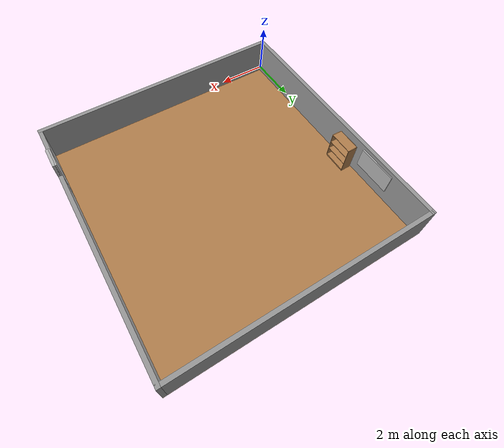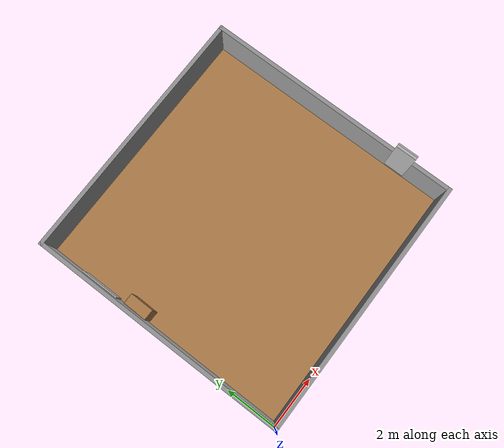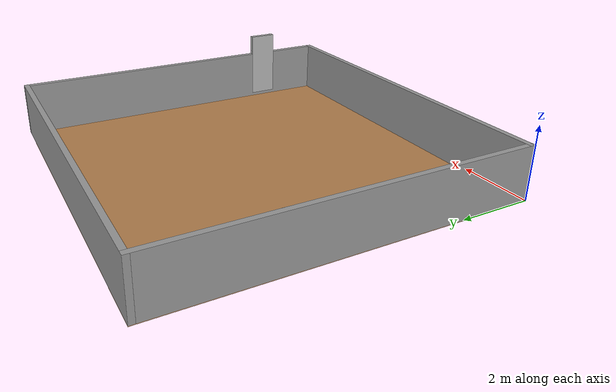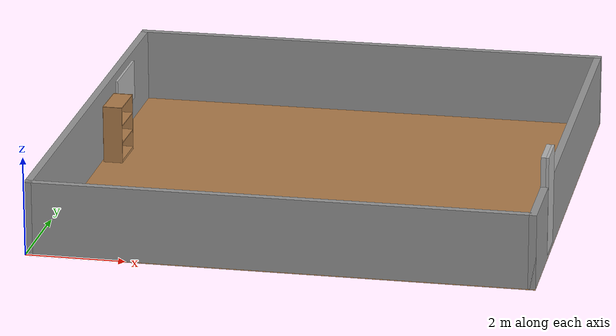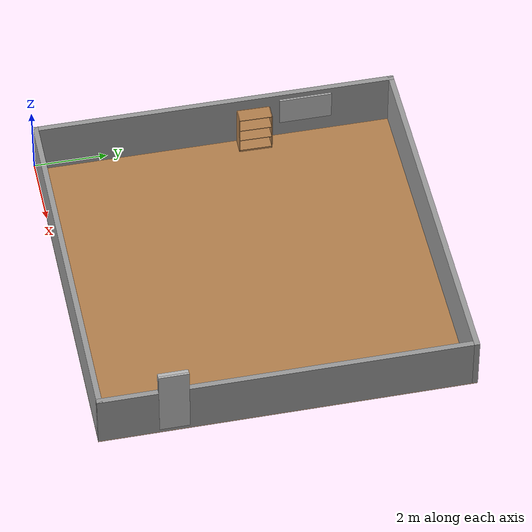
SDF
<sdf version="1.7">
 <world name="default">
  <light name="sun" type="directional">
   <pose>0 0 10 0 -0 0</pose>
   <diffuse>0.8 0.8 0.8 1</diffuse>
   <specular>0.2 0.2 0.2 1</specular>
   <attenuation>
    <range>1000</range>
    <constant>0.9</constant>
    <linear>0.01</linear>
    <quadratic>0.001</quadratic>
   </attenuation>
   <direction>-0.5 0.1 -0.9</direction>
   <spot><inner_angle>0</inner_angle><outer_angle>0</outer_angle><falloff>0</falloff></spot>
  </light>
  <model name="floor">
   <pose>5 5 0 0 0 0</pose>
   <static>1</static>
   <link name="link">
    <collision name="collision">
     <geometry><plane><normal>0 0 1</normal><size>10 10</size></plane></geometry>
     <surface>
      <contact><collide_bitmask>65535</collide_bitmask></contact>
      <friction><ode><mu>100</mu><mu2>50</mu2></ode></friction>
     </surface>
    </collision>
    <visual name="visual">
     <cast_shadows>0</cast_shadows>
     <geometry><plane><normal>0 0 1</normal><size>10 10</size></plane></geometry>
     <material>
      <script><uri>file://media/materials/scripts/gazebo.material</uri><name>Gazebo/Wood</name></script>
     </material>
    </visual>
   </link>
  </model>
  <gravity>0 0 -9.8</gravity>
  <magnetic_field>6e-06 2.3e-05 -4.2e-05</magnetic_field>
  <atmosphere type="adiabatic"/>
  <physics type="ode">
   <max_step_size>0.001</max_step_size>
   <real_time_factor>1</real_time_factor>
   <real_time_update_rate>250</real_time_update_rate>
  </physics>
  <scene><ambient>0.4 0.4 0.4 1</ambient><background>0.7 0.7 0.7 1</background><shadows>1</shadows></scene>
  <audio><device>default</device></audio>
  <spherical_coordinates>
   <surface_model>EARTH_WGS84</surface_model>
   <latitude_deg>0</latitude_deg>
   <longitude_deg>0</longitude_deg>
   <elevation>0</elevation>
   <heading_deg>0</heading_deg>
  </spherical_coordinates>
  <model name="empty_room">
   <pose>5 5 0 0 -0 0</pose>
   <link name="Wall_0">
    <collision name="Wall_0_Collision">
     <geometry><box><size>10 0.15 1.5</size></box></geometry>
     <pose>0 0 0.75 0 -0 0</pose>
    </collision>
    <visual name="Wall_0_Visual">
     <pose>0 0 0.75 0 -0 0</pose>
     <geometry><box><size>10 0.15 1.5</size></box></geometry>
     <material>
      <script><uri>file://media/materials/scripts/gazebo.material</uri><name>Gazebo/Grey</name></script>
      <ambient>1 1 1 1</ambient>
     </material>
     <meta><layer>0</layer></meta>
    </visual>
    <pose>-0 -4.925 0 0 -0 0</pose>
   </link>
   <link name="Wall_2">
    <collision name="Wall_2_Collision">
     <geometry><box><size>10 0.15 1.5</size></box></geometry>
     <pose>0 0 0.75 0 -0 0</pose>
    </collision>
    <visual name="Wall_2_Visual">
     <pose>0 0 0.75 0 -0 0</pose>
     <geometry><box><size>10 0.15 1.5</size></box></geometry>
     <material>
      <script><uri>file://media/materials/scripts/gazebo.material</uri><name>Gazebo/Grey</name></script>
      <ambient>1 1 1 1</ambient>
     </material>
     <meta><layer>0</layer></meta>
    </visual>
    <pose>4.925 0 0 0 -0 1.5708</pose>
   </link>
   <link name="Wall_3">
    <collision name="Wall_3_Collision">
     <geometry><box><size>10 0.15 1.5</size></box></geometry>
     <pose>0 0 0.75 0 -0 0</pose>
    </collision>
    <visual name="Wall_3_Visual">
     <pose>0 0 0.75 0 -0 0</pose>
     <geometry><box><size>10 0.15 1.5</size></box></geometry>
     <material>
      <script><uri>file://media/materials/scripts/gazebo.material</uri><name>Gazebo/Grey</name></script>
      <ambient>1 1 1 1</ambient>
     </material>
     <meta><layer>0</layer></meta>
    </visual>
    <pose>-0 4.925 0 0 -0 3.14159</pose>
   </link>
   <link name="Wall_4">
    <collision name="Wall_4_Collision">
     <geometry><box><size>10 0.15 1.5</size></box></geometry>
     <pose>0 0 0.75 0 -0 0</pose>
    </collision>
    <visual name="Wall_4_Visual">
     <pose>0 0 0.75 0 -0 0</pose>
     <geometry><box><size>10 0.15 1.5</size></box></geometry>
     <material>
      <script><uri>file://media/materials/scripts/gazebo.material</uri><name>Gazebo/Grey</name></script>
      <ambient>1 1 1 1</ambient>
     </material>
     <meta><layer>0</layer></meta>
    </visual>
    <pose>-4.925 0 0 0 -0 -1.5708</pose>
   </link>
   <static>1</static>
  </model>
  <model name="tv_65in_emissive">
   <link name="link">
    <visual name="visual">
     <geometry><box><size>0.05 1.45 0.83</size></box></geometry>
     <material>
      <script>
       <uri>model://tv_65in_emissive/material/script</uri>
       <uri>model://tv_65in_emissive/material/textures</uri>
       <name>Custom/tv_emissive</name>
      </script>
     </material>
    </visual>
   </link>
   <static>1</static>
   <pose>0.202479 7.51075 0.950213 0 -0 0</pose>
  </model>
  <model name="bookshelf">
   <static>1</static>
   <link name="link">
    <inertial><mass>1</mass></inertial>
    <collision name="back">
     <pose>0 0.005 0.6 0 -0 0</pose>
     <geometry><box><size>0.9 0.01 1.2</size></box></geometry>
    </collision>
    <visual name="visual1">
     <pose>0 0.005 0.6 0 -0 0</pose>
     <geometry><box><size>0.9 0.01 1.2</size></box></geometry>
     <material>
      <script><uri>file://media/materials/scripts/gazebo.material</uri><name>Gazebo/Wood</name></script>
     </material>
    </visual>
    <collision name="left_side">
     <pose>0.45 -0.195 0.6 0 -0 0</pose>
     <geometry><box><size>0.02 0.4 1.2</size></box></geometry>
    </collision>
    <visual name="visual2">
     <pose>0.45 -0.195 0.6 0 -0 0</pose>
     <geometry><box><size>0.02 0.4 1.2</size></box></geometry>
     <material>
      <script><uri>file://media/materials/scripts/gazebo.material</uri><name>Gazebo/Wood</name></script>
     </material>
    </visual>
    <collision name="right_side">
     <pose>-0.45 -0.195 0.6 0 -0 0</pose>
     <geometry><box><size>0.02 0.4 1.2</size></box></geometry>
    </collision>
    <visual name="visual3">
     <pose>-0.45 -0.195 0.6 0 -0 0</pose>
     <geometry><box><size>0.02 0.4 1.2</size></box></geometry>
     <material>
      <script><uri>file://media/materials/scripts/gazebo.material</uri><name>Gazebo/Wood</name></script>
     </material>
    </visual>
    <collision name="bottom">
     <pose>0 -0.195 0.03 0 -0 0</pose>
     <geometry><box><size>0.88 0.4 0.06</size></box></geometry>
    </collision>
    <visual name="visual4">
     <pose>0 -0.195 0.03 0 -0 0</pose>
     <geometry><box><size>0.88 0.4 0.06</size></box></geometry>
     <material>
      <script><uri>file://media/materials/scripts/gazebo.material</uri><name>Gazebo/Wood</name></script>
     </material>
    </visual>
    <collision name="top">
     <pose>0 -0.195 1.19 0 -0 0</pose>
     <geometry><box><size>0.88 0.4 0.02</size></box></geometry>
    </collision>
    <visual name="visual5">
     <pose>0 -0.195 1.19 0 -0 0</pose>
     <geometry><box><size>0.88 0.4 0.02</size></box></geometry>
     <material>
      <script><uri>file://media/materials/scripts/gazebo.material</uri><name>Gazebo/Wood</name></script>
     </material>
    </visual>
    <collision name="low_shelf">
     <pose>0 -0.195 0.43 0 -0 0</pose>
     <geometry><box><size>0.88 0.4 0.02</size></box></geometry>
    </collision>
    <visual name="visual6">
     <pose>0 -0.195 0.43 0 -0 0</pose>
     <geometry><box><size>0.88 0.4 0.02</size></box></geometry>
     <material>
      <script><uri>file://media/materials/scripts/gazebo.material</uri><name>Gazebo/Wood</name></script>
     </material>
    </visual>
    <collision name="high_shelf">
     <pose>0 -0.195 0.8 0 -0 0</pose>
     <geometry><box><size>0.88 0.4 0.02</size></box></geometry>
    </collision>
    <visual name="visual7">
     <pose>0 -0.195 0.8 0 -0 0</pose>
     <geometry><box><size>0.88 0.4 0.02</size></box></geometry>
     <material>
      <script><uri>file://media/materials/scripts/gazebo.material</uri><name>Gazebo/Wood</name></script>
     </material>
    </visual>
   </link>
   <pose>0.204337 6.054072 0 0 -0 1.558850</pose>
  </model>
  <model name="door_08x2m">
   <link name="link">
    <visual name="visual">
     <geometry><box><size>0.1 0.8 2</size></box></geometry>
     <material>
      <script>
       <uri>model://door_08x2m/material/script</uri>
       <uri>model://door_08x2m/material/textures</uri>
       <name>Custom/door_08x2m</name>
      </script>
     </material>
    </visual>
   </link>
   <static>1</static>
   <pose>9.89679 2 1.1 0 -0 0</pose>
  </model>
  <model name="door_08x2m_0">
   <link name="link">
    <visual name="visual">
     <geometry><box><size>0.1 0.8 2</size></box></geometry>
     <material>
      <script>
       <uri>model://door_08x2m/material/script</uri>
       <uri>model://door_08x2m/material/textures</uri>
       <name>Custom/door_08x2m</name>
      </script>
     </material>
    </visual>
   </link>
   <static>1</static>
   <pose>9.95336 2 1.1 0 -0 0</pose>
  </model>
 </world>
</sdf>
